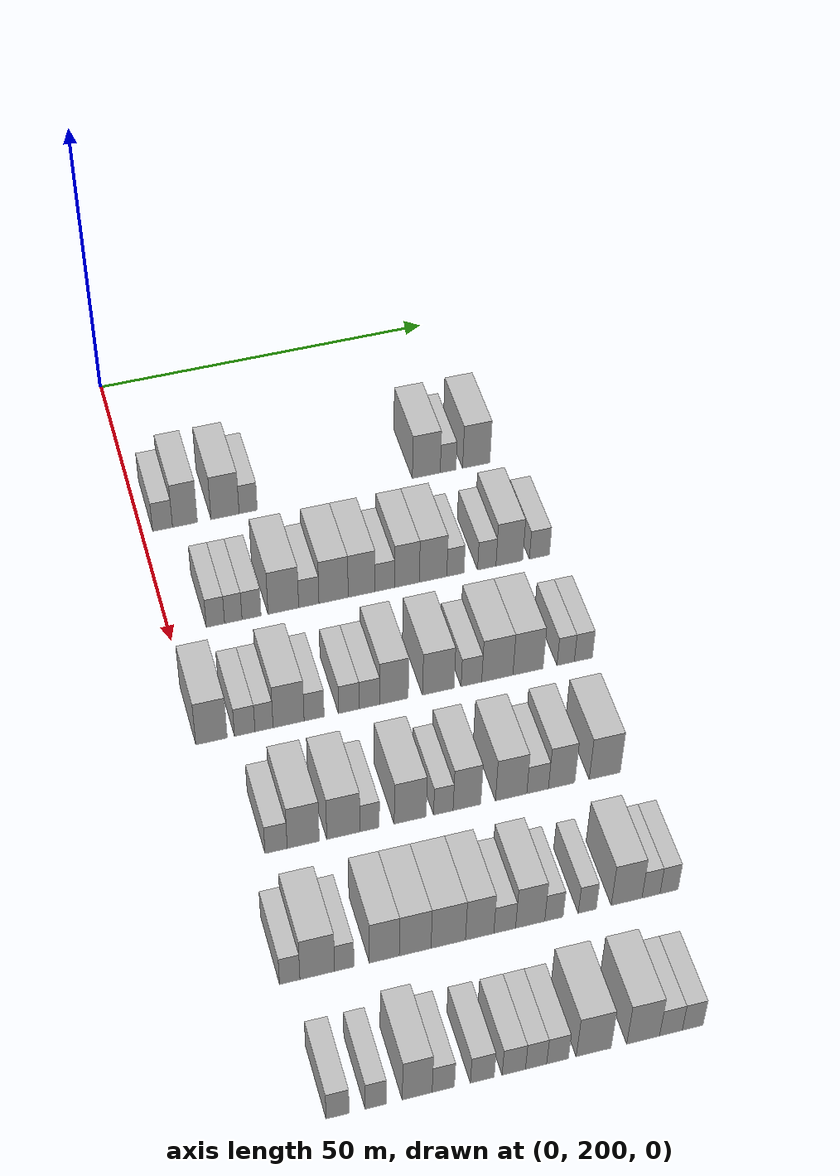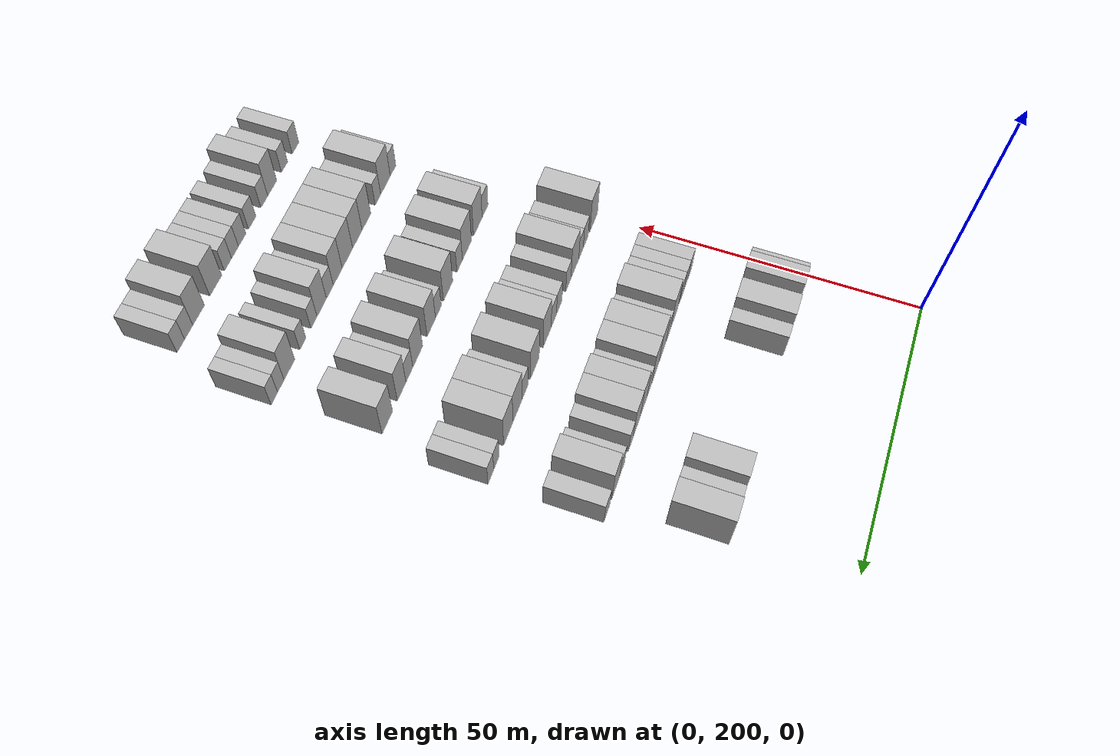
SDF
<sdf version="1.6">
 <world name="default">
  <model name="building_140">
   <static>1</static>
   <pose>25.0000 203.0741 0 0.000000 0.000000 0.000000</pose>
   <link name="link">
    <pose>0 0 3.00 0 0 0</pose>
    <collision name="collision"><geometry><box><size>10.0000 2.9091 6.0000</size></box></geometry></collision>
    <visual name="visual">
     <cast_shadows>0</cast_shadows>
     <geometry><box><size>10.0000 2.9091 6.0000</size></box></geometry>
     <material>
      <script>
       <uri>model://HANNAS_wall/materials/scripts</uri>
       <uri>model://HANNAS_wall/materials/textures</uri>
       <name>vrc/HANNAS_wall</name>
      </script>
     </material>
    </visual>
   </link>
  </model>
  <model name="building_141">
   <static>1</static>
   <pose>25.0000 206.3513 0 0.000000 0.000000 0.000000</pose>
   <link name="link">
    <pose>0 0 4.50 0 0 0</pose>
    <collision name="collision"><geometry><box><size>10.0000 3.6452 9.0000</size></box></geometry></collision>
    <visual name="visual">
     <cast_shadows>0</cast_shadows>
     <geometry><box><size>10.0000 3.6452 9.0000</size></box></geometry>
     <material>
      <script>
       <uri>model://HANNAS_wall/materials/scripts</uri>
       <uri>model://HANNAS_wall/materials/textures</uri>
       <name>vrc/HANNAS_wall</name>
      </script>
     </material>
    </visual>
   </link>
  </model>
  <model name="building_142">
   <static>1</static>
   <pose>25.0000 212.2451 0 0.000000 0.000000 0.000000</pose>
   <link name="link">
    <pose>0 0 4.50 0 0 0</pose>
    <collision name="collision"><geometry><box><size>10.0000 4.1425 9.0000</size></box></geometry></collision>
    <visual name="visual">
     <cast_shadows>0</cast_shadows>
     <geometry><box><size>10.0000 4.1425 9.0000</size></box></geometry>
     <material>
      <script>
       <uri>model://HANNAS_wall/materials/scripts</uri>
       <uri>model://HANNAS_wall/materials/textures</uri>
       <name>vrc/HANNAS_wall</name>
      </script>
     </material>
    </visual>
   </link>
  </model>
  <model name="building_143">
   <static>1</static>
   <pose>25.0000 215.6590 0 0.000000 0.000000 0.000000</pose>
   <link name="link">
    <pose>0 0 3.00 0 0 0</pose>
    <collision name="collision"><geometry><box><size>10.0000 2.6853 6.0000</size></box></geometry></collision>
    <visual name="visual">
     <cast_shadows>0</cast_shadows>
     <geometry><box><size>10.0000 2.6853 6.0000</size></box></geometry>
     <material>
      <script>
       <uri>model://HANNAS_wall/materials/scripts</uri>
       <uri>model://HANNAS_wall/materials/textures</uri>
       <name>vrc/HANNAS_wall</name>
      </script>
     </material>
    </visual>
   </link>
  </model>
  <model name="building_144">
   <static>1</static>
   <pose>25.0000 242.3461 0 0.000000 0.000000 0.000000</pose>
   <link name="link">
    <pose>0 0 4.50 0 0 0</pose>
    <collision name="collision"><geometry><box><size>10.0000 4.2296 9.0000</size></box></geometry></collision>
    <visual name="visual">
     <cast_shadows>0</cast_shadows>
     <geometry><box><size>10.0000 4.2296 9.0000</size></box></geometry>
     <material>
      <script>
       <uri>model://HANNAS_wall/materials/scripts</uri>
       <uri>model://HANNAS_wall/materials/textures</uri>
       <name>vrc/HANNAS_wall</name>
      </script>
     </material>
    </visual>
   </link>
  </model>
  <model name="building_145">
   <static>1</static>
   <pose>25.0000 245.6655 0 0.000000 0.000000 0.000000</pose>
   <link name="link">
    <pose>0 0 3.00 0 0 0</pose>
    <collision name="collision"><geometry><box><size>10.0000 2.4092 6.0000</size></box></geometry></collision>
    <visual name="visual">
     <cast_shadows>0</cast_shadows>
     <geometry><box><size>10.0000 2.4092 6.0000</size></box></geometry>
     <material>
      <script>
       <uri>model://HANNAS_wall/materials/scripts</uri>
       <uri>model://HANNAS_wall/materials/textures</uri>
       <name>vrc/HANNAS_wall</name>
      </script>
     </material>
    </visual>
   </link>
  </model>
  <model name="building_146">
   <static>1</static>
   <pose>25.0000 249.9518 0 0.000000 0.000000 0.000000</pose>
   <link name="link">
    <pose>0 0 4.50 0 0 0</pose>
    <collision name="collision"><geometry><box><size>10.0000 4.1634 9.0000</size></box></geometry></collision>
    <visual name="visual">
     <cast_shadows>0</cast_shadows>
     <geometry><box><size>10.0000 4.1634 9.0000</size></box></geometry>
     <material>
      <script>
       <uri>model://HANNAS_wall/materials/scripts</uri>
       <uri>model://HANNAS_wall/materials/textures</uri>
       <name>vrc/HANNAS_wall</name>
      </script>
     </material>
    </visual>
   </link>
  </model>
  <model name="building_307">
   <static>1</static>
   <pose>44.0000 206.5036 0 0.000000 0.000000 0.000000</pose>
   <link name="link">
    <pose>0 0 3.00 0 0 0</pose>
    <collision name="collision"><geometry><box><size>10.0000 2.5932 6.0000</size></box></geometry></collision>
    <visual name="visual">
     <cast_shadows>0</cast_shadows>
     <geometry><box><size>10.0000 2.5932 6.0000</size></box></geometry>
     <material>
      <script>
       <uri>model://HANNAS_wall/materials/scripts</uri>
       <uri>model://HANNAS_wall/materials/textures</uri>
       <name>vrc/HANNAS_wall</name>
      </script>
     </material>
    </visual>
   </link>
  </model>
  <model name="building_308">
   <static>1</static>
   <pose>44.0000 209.0437 0 0.000000 0.000000 0.000000</pose>
   <link name="link">
    <pose>0 0 3.00 0 0 0</pose>
    <collision name="collision"><geometry><box><size>10.0000 2.4868 6.0000</size></box></geometry></collision>
    <visual name="visual">
     <cast_shadows>0</cast_shadows>
     <geometry><box><size>10.0000 2.4868 6.0000</size></box></geometry>
     <material>
      <script>
       <uri>model://HANNAS_wall/materials/scripts</uri>
       <uri>model://HANNAS_wall/materials/textures</uri>
       <name>vrc/HANNAS_wall</name>
      </script>
     </material>
    </visual>
   </link>
  </model>
  <model name="building_309">
   <static>1</static>
   <pose>44.0000 211.6423 0 0.000000 0.000000 0.000000</pose>
   <link name="link">
    <pose>0 0 3.00 0 0 0</pose>
    <collision name="collision"><geometry><box><size>10.0000 2.7104 6.0000</size></box></geometry></collision>
    <visual name="visual">
     <cast_shadows>0</cast_shadows>
     <geometry><box><size>10.0000 2.7104 6.0000</size></box></geometry>
     <material>
      <script>
       <uri>model://HANNAS_wall/materials/scripts</uri>
       <uri>model://HANNAS_wall/materials/textures</uri>
       <name>vrc/HANNAS_wall</name>
      </script>
     </material>
    </visual>
   </link>
  </model>
  <model name="building_310">
   <static>1</static>
   <pose>44.0000 216.1931 0 0.000000 0.000000 0.000000</pose>
   <link name="link">
    <pose>0 0 4.50 0 0 0</pose>
    <collision name="collision"><geometry><box><size>10.0000 4.3913 9.0000</size></box></geometry></collision>
    <visual name="visual">
     <cast_shadows>0</cast_shadows>
     <geometry><box><size>10.0000 4.3913 9.0000</size></box></geometry>
     <material>
      <script>
       <uri>model://HANNAS_wall/materials/scripts</uri>
       <uri>model://HANNAS_wall/materials/textures</uri>
       <name>vrc/HANNAS_wall</name>
      </script>
     </material>
    </visual>
   </link>
  </model>
  <model name="building_311">
   <static>1</static>
   <pose>44.0000 219.8458 0 0.000000 0.000000 0.000000</pose>
   <link name="link">
    <pose>0 0 3.00 0 0 0</pose>
    <collision name="collision"><geometry><box><size>10.0000 2.9143 6.0000</size></box></geometry></collision>
    <visual name="visual">
     <cast_shadows>0</cast_shadows>
     <geometry><box><size>10.0000 2.9143 6.0000</size></box></geometry>
     <material>
      <script>
       <uri>model://HANNAS_wall/materials/scripts</uri>
       <uri>model://HANNAS_wall/materials/textures</uri>
       <name>vrc/HANNAS_wall</name>
      </script>
     </material>
    </visual>
   </link>
  </model>
  <model name="building_312">
   <static>1</static>
   <pose>44.0000 223.4106 0 0.000000 0.000000 0.000000</pose>
   <link name="link">
    <pose>0 0 4.50 0 0 0</pose>
    <collision name="collision"><geometry><box><size>10.0000 4.2153 9.0000</size></box></geometry></collision>
    <visual name="visual">
     <cast_shadows>0</cast_shadows>
     <geometry><box><size>10.0000 4.2153 9.0000</size></box></geometry>
     <material>
      <script>
       <uri>model://HANNAS_wall/materials/scripts</uri>
       <uri>model://HANNAS_wall/materials/textures</uri>
       <name>vrc/HANNAS_wall</name>
      </script>
     </material>
    </visual>
   </link>
  </model>
  <model name="building_313">
   <static>1</static>
   <pose>44.0000 227.4663 0 0.000000 0.000000 0.000000</pose>
   <link name="link">
    <pose>0 0 4.50 0 0 0</pose>
    <collision name="collision"><geometry><box><size>10.0000 3.8960 9.0000</size></box></geometry></collision>
    <visual name="visual">
     <cast_shadows>0</cast_shadows>
     <geometry><box><size>10.0000 3.8960 9.0000</size></box></geometry>
     <material>
      <script>
       <uri>model://HANNAS_wall/materials/scripts</uri>
       <uri>model://HANNAS_wall/materials/textures</uri>
       <name>vrc/HANNAS_wall</name>
      </script>
     </material>
    </visual>
   </link>
  </model>
  <model name="building_314">
   <static>1</static>
   <pose>44.0000 230.8270 0 0.000000 0.000000 0.000000</pose>
   <link name="link">
    <pose>0 0 3.00 0 0 0</pose>
    <collision name="collision"><geometry><box><size>10.0000 2.8255 6.0000</size></box></geometry></collision>
    <visual name="visual">
     <cast_shadows>0</cast_shadows>
     <geometry><box><size>10.0000 2.8255 6.0000</size></box></geometry>
     <material>
      <script>
       <uri>model://HANNAS_wall/materials/scripts</uri>
       <uri>model://HANNAS_wall/materials/textures</uri>
       <name>vrc/HANNAS_wall</name>
      </script>
     </material>
    </visual>
   </link>
  </model>
  <model name="building_315">
   <static>1</static>
   <pose>44.0000 234.0480 0 0.000000 0.000000 0.000000</pose>
   <link name="link">
    <pose>0 0 4.50 0 0 0</pose>
    <collision name="collision"><geometry><box><size>10.0000 3.6164 9.0000</size></box></geometry></collision>
    <visual name="visual">
     <cast_shadows>0</cast_shadows>
     <geometry><box><size>10.0000 3.6164 9.0000</size></box></geometry>
     <material>
      <script>
       <uri>model://HANNAS_wall/materials/scripts</uri>
       <uri>model://HANNAS_wall/materials/textures</uri>
       <name>vrc/HANNAS_wall</name>
      </script>
     </material>
    </visual>
   </link>
  </model>
  <model name="building_316">
   <static>1</static>
   <pose>44.0000 237.8694 0 0.000000 0.000000 0.000000</pose>
   <link name="link">
    <pose>0 0 4.50 0 0 0</pose>
    <collision name="collision"><geometry><box><size>10.0000 4.0265 9.0000</size></box></geometry></collision>
    <visual name="visual">
     <cast_shadows>0</cast_shadows>
     <geometry><box><size>10.0000 4.0265 9.0000</size></box></geometry>
     <material>
      <script>
       <uri>model://HANNAS_wall/materials/scripts</uri>
       <uri>model://HANNAS_wall/materials/textures</uri>
       <name>vrc/HANNAS_wall</name>
      </script>
     </material>
    </visual>
   </link>
  </model>
  <model name="building_317">
   <static>1</static>
   <pose>44.0000 241.1524 0 0.000000 0.000000 0.000000</pose>
   <link name="link">
    <pose>0 0 3.00 0 0 0</pose>
    <collision name="collision"><geometry><box><size>10.0000 2.5395 6.0000</size></box></geometry></collision>
    <visual name="visual">
     <cast_shadows>0</cast_shadows>
     <geometry><box><size>10.0000 2.5395 6.0000</size></box></geometry>
     <material>
      <script>
       <uri>model://HANNAS_wall/materials/scripts</uri>
       <uri>model://HANNAS_wall/materials/textures</uri>
       <name>vrc/HANNAS_wall</name>
      </script>
     </material>
    </visual>
   </link>
  </model>
  <model name="building_318">
   <static>1</static>
   <pose>44.0000 245.7757 0 0.000000 0.000000 0.000000</pose>
   <link name="link">
    <pose>0 0 3.00 0 0 0</pose>
    <collision name="collision"><geometry><box><size>10.0000 2.7072 6.0000</size></box></geometry></collision>
    <visual name="visual">
     <cast_shadows>0</cast_shadows>
     <geometry><box><size>10.0000 2.7072 6.0000</size></box></geometry>
     <material>
      <script>
       <uri>model://HANNAS_wall/materials/scripts</uri>
       <uri>model://HANNAS_wall/materials/textures</uri>
       <name>vrc/HANNAS_wall</name>
      </script>
     </material>
    </visual>
   </link>
  </model>
  <model name="building_319">
   <static>1</static>
   <pose>44.0000 249.1113 0 0.000000 0.000000 0.000000</pose>
   <link name="link">
    <pose>0 0 4.50 0 0 0</pose>
    <collision name="collision"><geometry><box><size>10.0000 3.9639 9.0000</size></box></geometry></collision>
    <visual name="visual">
     <cast_shadows>0</cast_shadows>
     <geometry><box><size>10.0000 3.9639 9.0000</size></box></geometry>
     <material>
      <script>
       <uri>model://HANNAS_wall/materials/scripts</uri>
       <uri>model://HANNAS_wall/materials/textures</uri>
       <name>vrc/HANNAS_wall</name>
      </script>
     </material>
    </visual>
   </link>
  </model>
  <model name="building_320">
   <static>1</static>
   <pose>44.0000 253.5784 0 0.000000 0.000000 0.000000</pose>
   <link name="link">
    <pose>0 0 3.00 0 0 0</pose>
    <collision name="collision"><geometry><box><size>10.0000 2.9703 6.0000</size></box></geometry></collision>
    <visual name="visual">
     <cast_shadows>0</cast_shadows>
     <geometry><box><size>10.0000 2.9703 6.0000</size></box></geometry>
     <material>
      <script>
       <uri>model://HANNAS_wall/materials/scripts</uri>
       <uri>model://HANNAS_wall/materials/textures</uri>
       <name>vrc/HANNAS_wall</name>
      </script>
     </material>
    </visual>
   </link>
  </model>
  <model name="building_487">
   <static>1</static>
   <pose>63.0000 201.6480 0 0.000000 0.000000 0.000000</pose>
   <link name="link">
    <pose>0 0 4.50 0 0 0</pose>
    <collision name="collision"><geometry><box><size>10.0000 4.2913 9.0000</size></box></geometry></collision>
    <visual name="visual">
     <cast_shadows>0</cast_shadows>
     <geometry><box><size>10.0000 4.2913 9.0000</size></box></geometry>
     <material>
      <script>
       <uri>model://HANNAS_wall/materials/scripts</uri>
       <uri>model://HANNAS_wall/materials/textures</uri>
       <name>vrc/HANNAS_wall</name>
      </script>
     </material>
    </visual>
   </link>
  </model>
  <model name="building_488">
   <static>1</static>
   <pose>63.0000 206.2002 0 0.000000 0.000000 0.000000</pose>
   <link name="link">
    <pose>0 0 3.00 0 0 0</pose>
    <collision name="collision"><geometry><box><size>10.0000 2.8131 6.0000</size></box></geometry></collision>
    <visual name="visual">
     <cast_shadows>0</cast_shadows>
     <geometry><box><size>10.0000 2.8131 6.0000</size></box></geometry>
     <material>
      <script>
       <uri>model://HANNAS_wall/materials/scripts</uri>
       <uri>model://HANNAS_wall/materials/textures</uri>
       <name>vrc/HANNAS_wall</name>
      </script>
     </material>
    </visual>
   </link>
  </model>
  <model name="building_489">
   <static>1</static>
   <pose>63.0000 208.8527 0 0.000000 0.000000 0.000000</pose>
   <link name="link">
    <pose>0 0 3.00 0 0 0</pose>
    <collision name="collision"><geometry><box><size>10.0000 2.4920 6.0000</size></box></geometry></collision>
    <visual name="visual">
     <cast_shadows>0</cast_shadows>
     <geometry><box><size>10.0000 2.4920 6.0000</size></box></geometry>
     <material>
      <script>
       <uri>model://HANNAS_wall/materials/scripts</uri>
       <uri>model://HANNAS_wall/materials/textures</uri>
       <name>vrc/HANNAS_wall</name>
      </script>
     </material>
    </visual>
   </link>
  </model>
  <model name="building_490">
   <static>1</static>
   <pose>63.0000 212.2396 0 0.000000 0.000000 0.000000</pose>
   <link name="link">
    <pose>0 0 4.50 0 0 0</pose>
    <collision name="collision"><geometry><box><size>10.0000 4.2818 9.0000</size></box></geometry></collision>
    <visual name="visual">
     <cast_shadows>0</cast_shadows>
     <geometry><box><size>10.0000 4.2818 9.0000</size></box></geometry>
     <material>
      <script>
       <uri>model://HANNAS_wall/materials/scripts</uri>
       <uri>model://HANNAS_wall/materials/textures</uri>
       <name>vrc/HANNAS_wall</name>
      </script>
     </material>
    </visual>
   </link>
  </model>
  <model name="building_491">
   <static>1</static>
   <pose>63.0000 215.7628 0 0.000000 0.000000 0.000000</pose>
   <link name="link">
    <pose>0 0 3.00 0 0 0</pose>
    <collision name="collision"><geometry><box><size>10.0000 2.7646 6.0000</size></box></geometry></collision>
    <visual name="visual">
     <cast_shadows>0</cast_shadows>
     <geometry><box><size>10.0000 2.7646 6.0000</size></box></geometry>
     <material>
      <script>
       <uri>model://HANNAS_wall/materials/scripts</uri>
       <uri>model://HANNAS_wall/materials/textures</uri>
       <name>vrc/HANNAS_wall</name>
      </script>
     </material>
    </visual>
   </link>
  </model>
  <model name="building_492">
   <static>1</static>
   <pose>63.0000 220.5924 0 0.000000 0.000000 0.000000</pose>
   <link name="link">
    <pose>0 0 3.00 0 0 0</pose>
    <collision name="collision"><geometry><box><size>10.0000 2.8948 6.0000</size></box></geometry></collision>
    <visual name="visual">
     <cast_shadows>0</cast_shadows>
     <geometry><box><size>10.0000 2.8948 6.0000</size></box></geometry>
     <material>
      <script>
       <uri>model://HANNAS_wall/materials/scripts</uri>
       <uri>model://HANNAS_wall/materials/textures</uri>
       <name>vrc/HANNAS_wall</name>
      </script>
     </material>
    </visual>
   </link>
  </model>
  <model name="building_493">
   <static>1</static>
   <pose>63.0000 223.4485 0 0.000000 0.000000 0.000000</pose>
   <link name="link">
    <pose>0 0 3.00 0 0 0</pose>
    <collision name="collision"><geometry><box><size>10.0000 2.8175 6.0000</size></box></geometry></collision>
    <visual name="visual">
     <cast_shadows>0</cast_shadows>
     <geometry><box><size>10.0000 2.8175 6.0000</size></box></geometry>
     <material>
      <script>
       <uri>model://HANNAS_wall/materials/scripts</uri>
       <uri>model://HANNAS_wall/materials/textures</uri>
       <name>vrc/HANNAS_wall</name>
      </script>
     </material>
    </visual>
   </link>
  </model>
  <model name="building_494">
   <static>1</static>
   <pose>63.0000 226.8751 0 0.000000 0.000000 0.000000</pose>
   <link name="link">
    <pose>0 0 4.50 0 0 0</pose>
    <collision name="collision"><geometry><box><size>10.0000 4.0356 9.0000</size></box></geometry></collision>
    <visual name="visual">
     <cast_shadows>0</cast_shadows>
     <geometry><box><size>10.0000 4.0356 9.0000</size></box></geometry>
     <material>
      <script>
       <uri>model://HANNAS_wall/materials/scripts</uri>
       <uri>model://HANNAS_wall/materials/textures</uri>
       <name>vrc/HANNAS_wall</name>
      </script>
     </material>
    </visual>
   </link>
  </model>
  <model name="building_495">
   <static>1</static>
   <pose>63.0000 233.1221 0 0.000000 0.000000 0.000000</pose>
   <link name="link">
    <pose>0 0 4.50 0 0 0</pose>
    <collision name="collision"><geometry><box><size>10.0000 4.4583 9.0000</size></box></geometry></collision>
    <visual name="visual">
     <cast_shadows>0</cast_shadows>
     <geometry><box><size>10.0000 4.4583 9.0000</size></box></geometry>
     <material>
      <script>
       <uri>model://HANNAS_wall/materials/scripts</uri>
       <uri>model://HANNAS_wall/materials/textures</uri>
       <name>vrc/HANNAS_wall</name>
      </script>
     </material>
    </visual>
   </link>
  </model>
  <model name="building_496">
   <static>1</static>
   <pose>63.0000 237.8103 0 0.000000 0.000000 0.000000</pose>
   <link name="link">
    <pose>0 0 3.00 0 0 0</pose>
    <collision name="collision"><geometry><box><size>10.0000 2.9181 6.0000</size></box></geometry></collision>
    <visual name="visual">
     <cast_shadows>0</cast_shadows>
     <geometry><box><size>10.0000 2.9181 6.0000</size></box></geometry>
     <material>
      <script>
       <uri>model://HANNAS_wall/materials/scripts</uri>
       <uri>model://HANNAS_wall/materials/textures</uri>
       <name>vrc/HANNAS_wall</name>
      </script>
     </material>
    </visual>
   </link>
  </model>
  <model name="building_497">
   <static>1</static>
   <pose>63.0000 241.4926 0 0.000000 0.000000 0.000000</pose>
   <link name="link">
    <pose>0 0 4.50 0 0 0</pose>
    <collision name="collision"><geometry><box><size>10.0000 4.4466 9.0000</size></box></geometry></collision>
    <visual name="visual">
     <cast_shadows>0</cast_shadows>
     <geometry><box><size>10.0000 4.4466 9.0000</size></box></geometry>
     <material>
      <script>
       <uri>model://HANNAS_wall/materials/scripts</uri>
       <uri>model://HANNAS_wall/materials/textures</uri>
       <name>vrc/HANNAS_wall</name>
      </script>
     </material>
    </visual>
   </link>
  </model>
  <model name="building_498">
   <static>1</static>
   <pose>63.0000 245.8710 0 0.000000 0.000000 0.000000</pose>
   <link name="link">
    <pose>0 0 4.50 0 0 0</pose>
    <collision name="collision"><geometry><box><size>10.0000 4.3102 9.0000</size></box></geometry></collision>
    <visual name="visual">
     <cast_shadows>0</cast_shadows>
     <geometry><box><size>10.0000 4.3102 9.0000</size></box></geometry>
     <material>
      <script>
       <uri>model://HANNAS_wall/materials/scripts</uri>
       <uri>model://HANNAS_wall/materials/textures</uri>
       <name>vrc/HANNAS_wall</name>
      </script>
     </material>
    </visual>
   </link>
  </model>
  <model name="building_499">
   <static>1</static>
   <pose>63.0000 251.2716 0 0.000000 0.000000 0.000000</pose>
   <link name="link">
    <pose>0 0 3.00 0 0 0</pose>
    <collision name="collision"><geometry><box><size>10.0000 2.4909 6.0000</size></box></geometry></collision>
    <visual name="visual">
     <cast_shadows>0</cast_shadows>
     <geometry><box><size>10.0000 2.4909 6.0000</size></box></geometry>
     <material>
      <script>
       <uri>model://HANNAS_wall/materials/scripts</uri>
       <uri>model://HANNAS_wall/materials/textures</uri>
       <name>vrc/HANNAS_wall</name>
      </script>
     </material>
    </visual>
   </link>
  </model>
  <model name="building_500">
   <static>1</static>
   <pose>63.0000 253.8143 0 0.000000 0.000000 0.000000</pose>
   <link name="link">
    <pose>0 0 3.00 0 0 0</pose>
    <collision name="collision"><geometry><box><size>10.0000 2.5946 6.0000</size></box></geometry></collision>
    <visual name="visual">
     <cast_shadows>0</cast_shadows>
     <geometry><box><size>10.0000 2.5946 6.0000</size></box></geometry>
     <material>
      <script>
       <uri>model://HANNAS_wall/materials/scripts</uri>
       <uri>model://HANNAS_wall/materials/textures</uri>
       <name>vrc/HANNAS_wall</name>
      </script>
     </material>
    </visual>
   </link>
  </model>
  <model name="building_634">
   <static>1</static>
   <pose>82.0000 205.8728 0 0.000000 0.000000 0.000000</pose>
   <link name="link">
    <pose>0 0 3.00 0 0 0</pose>
    <collision name="collision"><geometry><box><size>10.0000 2.9361 6.0000</size></box></geometry></collision>
    <visual name="visual">
     <cast_shadows>0</cast_shadows>
     <geometry><box><size>10.0000 2.9361 6.0000</size></box></geometry>
     <material>
      <script>
       <uri>model://HANNAS_wall/materials/scripts</uri>
       <uri>model://HANNAS_wall/materials/textures</uri>
       <name>vrc/HANNAS_wall</name>
      </script>
     </material>
    </visual>
   </link>
  </model>
  <model name="building_635">
   <static>1</static>
   <pose>82.0000 209.4724 0 0.000000 0.000000 0.000000</pose>
   <link name="link">
    <pose>0 0 4.50 0 0 0</pose>
    <collision name="collision"><geometry><box><size>10.0000 4.2632 9.0000</size></box></geometry></collision>
    <visual name="visual">
     <cast_shadows>0</cast_shadows>
     <geometry><box><size>10.0000 4.2632 9.0000</size></box></geometry>
     <material>
      <script>
       <uri>model://HANNAS_wall/materials/scripts</uri>
       <uri>model://HANNAS_wall/materials/textures</uri>
       <name>vrc/HANNAS_wall</name>
      </script>
     </material>
    </visual>
   </link>
  </model>
  <model name="building_636">
   <static>1</static>
   <pose>82.0000 214.8080 0 0.000000 0.000000 0.000000</pose>
   <link name="link">
    <pose>0 0 4.50 0 0 0</pose>
    <collision name="collision"><geometry><box><size>10.0000 4.4079 9.0000</size></box></geometry></collision>
    <visual name="visual">
     <cast_shadows>0</cast_shadows>
     <geometry><box><size>10.0000 4.4079 9.0000</size></box></geometry>
     <material>
      <script>
       <uri>model://HANNAS_wall/materials/scripts</uri>
       <uri>model://HANNAS_wall/materials/textures</uri>
       <name>vrc/HANNAS_wall</name>
      </script>
     </material>
    </visual>
   </link>
  </model>
  <model name="building_637">
   <static>1</static>
   <pose>82.0000 218.3276 0 0.000000 0.000000 0.000000</pose>
   <link name="link">
    <pose>0 0 3.00 0 0 0</pose>
    <collision name="collision"><geometry><box><size>10.0000 2.6313 6.0000</size></box></geometry></collision>
    <visual name="visual">
     <cast_shadows>0</cast_shadows>
     <geometry><box><size>10.0000 2.6313 6.0000</size></box></geometry>
     <material>
      <script>
       <uri>model://HANNAS_wall/materials/scripts</uri>
       <uri>model://HANNAS_wall/materials/textures</uri>
       <name>vrc/HANNAS_wall</name>
      </script>
     </material>
    </visual>
   </link>
  </model>
  <model name="building_638">
   <static>1</static>
   <pose>82.0000 223.8048 0 0.000000 0.000000 0.000000</pose>
   <link name="link">
    <pose>0 0 4.50 0 0 0</pose>
    <collision name="collision"><geometry><box><size>10.0000 4.3232 9.0000</size></box></geometry></collision>
    <visual name="visual">
     <cast_shadows>0</cast_shadows>
     <geometry><box><size>10.0000 4.3232 9.0000</size></box></geometry>
     <material>
      <script>
       <uri>model://HANNAS_wall/materials/scripts</uri>
       <uri>model://HANNAS_wall/materials/textures</uri>
       <name>vrc/HANNAS_wall</name>
      </script>
     </material>
    </visual>
   </link>
  </model>
  <model name="building_639">
   <static>1</static>
   <pose>82.0000 228.2898 0 0.000000 0.000000 0.000000</pose>
   <link name="link">
    <pose>0 0 3.00 0 0 0</pose>
    <collision name="collision"><geometry><box><size>10.0000 2.6467 6.0000</size></box></geometry></collision>
    <visual name="visual">
     <cast_shadows>0</cast_shadows>
     <geometry><box><size>10.0000 2.6467 6.0000</size></box></geometry>
     <material>
      <script>
       <uri>model://HANNAS_wall/materials/scripts</uri>
       <uri>model://HANNAS_wall/materials/textures</uri>
       <name>vrc/HANNAS_wall</name>
      </script>
     </material>
    </visual>
   </link>
  </model>
  <model name="building_640">
   <static>1</static>
   <pose>82.0000 231.5026 0 0.000000 0.000000 0.000000</pose>
   <link name="link">
    <pose>0 0 4.50 0 0 0</pose>
    <collision name="collision"><geometry><box><size>10.0000 3.7789 9.0000</size></box></geometry></collision>
    <visual name="visual">
     <cast_shadows>0</cast_shadows>
     <geometry><box><size>10.0000 3.7789 9.0000</size></box></geometry>
     <material>
      <script>
       <uri>model://HANNAS_wall/materials/scripts</uri>
       <uri>model://HANNAS_wall/materials/textures</uri>
       <name>vrc/HANNAS_wall</name>
      </script>
     </material>
    </visual>
   </link>
  </model>
  <model name="building_641">
   <static>1</static>
   <pose>82.0000 237.5393 0 0.000000 0.000000 0.000000</pose>
   <link name="link">
    <pose>0 0 4.50 0 0 0</pose>
    <collision name="collision"><geometry><box><size>10.0000 4.2945 9.0000</size></box></geometry></collision>
    <visual name="visual">
     <cast_shadows>0</cast_shadows>
     <geometry><box><size>10.0000 4.2945 9.0000</size></box></geometry>
     <material>
      <script>
       <uri>model://HANNAS_wall/materials/scripts</uri>
       <uri>model://HANNAS_wall/materials/textures</uri>
       <name>vrc/HANNAS_wall</name>
      </script>
     </material>
    </visual>
   </link>
  </model>
  <model name="building_642">
   <static>1</static>
   <pose>82.0000 241.1733 0 0.000000 0.000000 0.000000</pose>
   <link name="link">
    <pose>0 0 3.00 0 0 0</pose>
    <collision name="collision"><geometry><box><size>10.0000 2.9737 6.0000</size></box></geometry></collision>
    <visual name="visual">
     <cast_shadows>0</cast_shadows>
     <geometry><box><size>10.0000 2.9737 6.0000</size></box></geometry>
     <material>
      <script>
       <uri>model://HANNAS_wall/materials/scripts</uri>
       <uri>model://HANNAS_wall/materials/textures</uri>
       <name>vrc/HANNAS_wall</name>
      </script>
     </material>
    </visual>
   </link>
  </model>
  <model name="building_643">
   <static>1</static>
   <pose>82.0000 244.4833 0 0.000000 0.000000 0.000000</pose>
   <link name="link">
    <pose>0 0 4.50 0 0 0</pose>
    <collision name="collision"><geometry><box><size>10.0000 3.6462 9.0000</size></box></geometry></collision>
    <visual name="visual">
     <cast_shadows>0</cast_shadows>
     <geometry><box><size>10.0000 3.6462 9.0000</size></box></geometry>
     <material>
      <script>
       <uri>model://HANNAS_wall/materials/scripts</uri>
       <uri>model://HANNAS_wall/materials/textures</uri>
       <name>vrc/HANNAS_wall</name>
      </script>
     </material>
    </visual>
   </link>
  </model>
  <model name="building_644">
   <static>1</static>
   <pose>82.0000 250.4599 0 0.000000 0.000000 0.000000</pose>
   <link name="link">
    <pose>0 0 4.50 0 0 0</pose>
    <collision name="collision"><geometry><box><size>10.0000 4.3070 9.0000</size></box></geometry></collision>
    <visual name="visual">
     <cast_shadows>0</cast_shadows>
     <geometry><box><size>10.0000 4.3070 9.0000</size></box></geometry>
     <material>
      <script>
       <uri>model://HANNAS_wall/materials/scripts</uri>
       <uri>model://HANNAS_wall/materials/textures</uri>
       <name>vrc/HANNAS_wall</name>
      </script>
     </material>
    </visual>
   </link>
  </model>
  <model name="building_806">
   <static>1</static>
   <pose>101.0000 202.9585 0 0.000000 0.000000 0.000000</pose>
   <link name="link">
    <pose>0 0 3.00 0 0 0</pose>
    <collision name="collision"><geometry><box><size>10.0000 2.5976 6.0000</size></box></geometry></collision>
    <visual name="visual">
     <cast_shadows>0</cast_shadows>
     <geometry><box><size>10.0000 2.5976 6.0000</size></box></geometry>
     <material>
      <script>
       <uri>model://HANNAS_wall/materials/scripts</uri>
       <uri>model://HANNAS_wall/materials/textures</uri>
       <name>vrc/HANNAS_wall</name>
      </script>
     </material>
    </visual>
   </link>
  </model>
  <model name="building_807">
   <static>1</static>
   <pose>101.0000 206.4700 0 0.000000 0.000000 0.000000</pose>
   <link name="link">
    <pose>0 0 4.50 0 0 0</pose>
    <collision name="collision"><geometry><box><size>10.0000 4.4254 9.0000</size></box></geometry></collision>
    <visual name="visual">
     <cast_shadows>0</cast_shadows>
     <geometry><box><size>10.0000 4.4254 9.0000</size></box></geometry>
     <material>
      <script>
       <uri>model://HANNAS_wall/materials/scripts</uri>
       <uri>model://HANNAS_wall/materials/textures</uri>
       <name>vrc/HANNAS_wall</name>
      </script>
     </material>
    </visual>
   </link>
  </model>
  <model name="building_808">
   <static>1</static>
   <pose>101.0000 209.9263 0 0.000000 0.000000 0.000000</pose>
   <link name="link">
    <pose>0 0 3.00 0 0 0</pose>
    <collision name="collision"><geometry><box><size>10.0000 2.4872 6.0000</size></box></geometry></collision>
    <visual name="visual">
     <cast_shadows>0</cast_shadows>
     <geometry><box><size>10.0000 2.4872 6.0000</size></box></geometry>
     <material>
      <script>
       <uri>model://HANNAS_wall/materials/scripts</uri>
       <uri>model://HANNAS_wall/materials/textures</uri>
       <name>vrc/HANNAS_wall</name>
      </script>
     </material>
    </visual>
   </link>
  </model>
  <model name="building_809">
   <static>1</static>
   <pose>101.0000 215.0956 0 0.000000 0.000000 0.000000</pose>
   <link name="link">
    <pose>0 0 4.50 0 0 0</pose>
    <collision name="collision"><geometry><box><size>10.0000 3.8514 9.0000</size></box></geometry></collision>
    <visual name="visual">
     <cast_shadows>0</cast_shadows>
     <geometry><box><size>10.0000 3.8514 9.0000</size></box></geometry>
     <material>
      <script>
       <uri>model://HANNAS_wall/materials/scripts</uri>
       <uri>model://HANNAS_wall/materials/textures</uri>
       <name>vrc/HANNAS_wall</name>
      </script>
     </material>
    </visual>
   </link>
  </model>
  <model name="building_810">
   <static>1</static>
   <pose>101.0000 219.0798 0 0.000000 0.000000 0.000000</pose>
   <link name="link">
    <pose>0 0 4.50 0 0 0</pose>
    <collision name="collision"><geometry><box><size>10.0000 4.1171 9.0000</size></box></geometry></collision>
    <visual name="visual">
     <cast_shadows>0</cast_shadows>
     <geometry><box><size>10.0000 4.1171 9.0000</size></box></geometry>
     <material>
      <script>
       <uri>model://HANNAS_wall/materials/scripts</uri>
       <uri>model://HANNAS_wall/materials/textures</uri>
       <name>vrc/HANNAS_wall</name>
      </script>
     </material>
    </visual>
   </link>
  </model>
  <model name="building_811">
   <static>1</static>
   <pose>101.0000 223.3826 0 0.000000 0.000000 0.000000</pose>
   <link name="link">
    <pose>0 0 4.50 0 0 0</pose>
    <collision name="collision"><geometry><box><size>10.0000 4.4884 9.0000</size></box></geometry></collision>
    <visual name="visual">
     <cast_shadows>0</cast_shadows>
     <geometry><box><size>10.0000 4.4884 9.0000</size></box></geometry>
     <material>
      <script>
       <uri>model://HANNAS_wall/materials/scripts</uri>
       <uri>model://HANNAS_wall/materials/textures</uri>
       <name>vrc/HANNAS_wall</name>
      </script>
     </material>
    </visual>
   </link>
  </model>
  <model name="building_812">
   <static>1</static>
   <pose>101.0000 227.4846 0 0.000000 0.000000 0.000000</pose>
   <link name="link">
    <pose>0 0 4.50 0 0 0</pose>
    <collision name="collision"><geometry><box><size>10.0000 3.7157 9.0000</size></box></geometry></collision>
    <visual name="visual">
     <cast_shadows>0</cast_shadows>
     <geometry><box><size>10.0000 3.7157 9.0000</size></box></geometry>
     <material>
      <script>
       <uri>model://HANNAS_wall/materials/scripts</uri>
       <uri>model://HANNAS_wall/materials/textures</uri>
       <name>vrc/HANNAS_wall</name>
      </script>
     </material>
    </visual>
   </link>
  </model>
  <model name="building_813">
   <static>1</static>
   <pose>101.0000 230.7727 0 0.000000 0.000000 0.000000</pose>
   <link name="link">
    <pose>0 0 3.00 0 0 0</pose>
    <collision name="collision"><geometry><box><size>10.0000 2.8605 6.0000</size></box></geometry></collision>
    <visual name="visual">
     <cast_shadows>0</cast_shadows>
     <geometry><box><size>10.0000 2.8605 6.0000</size></box></geometry>
     <material>
      <script>
       <uri>model://HANNAS_wall/materials/scripts</uri>
       <uri>model://HANNAS_wall/materials/textures</uri>
       <name>vrc/HANNAS_wall</name>
      </script>
     </material>
    </visual>
   </link>
  </model>
  <model name="building_814">
   <static>1</static>
   <pose>101.0000 234.1250 0 0.000000 0.000000 0.000000</pose>
   <link name="link">
    <pose>0 0 4.50 0 0 0</pose>
    <collision name="collision"><geometry><box><size>10.0000 3.8441 9.0000</size></box></geometry></collision>
    <visual name="visual">
     <cast_shadows>0</cast_shadows>
     <geometry><box><size>10.0000 3.8441 9.0000</size></box></geometry>
     <material>
      <script>
       <uri>model://HANNAS_wall/materials/scripts</uri>
       <uri>model://HANNAS_wall/materials/textures</uri>
       <name>vrc/HANNAS_wall</name>
      </script>
     </material>
    </visual>
   </link>
  </model>
  <model name="building_815">
   <static>1</static>
   <pose>101.0000 237.2674 0 0.000000 0.000000 0.000000</pose>
   <link name="link">
    <pose>0 0 3.00 0 0 0</pose>
    <collision name="collision"><geometry><box><size>10.0000 2.4408 6.0000</size></box></geometry></collision>
    <visual name="visual">
     <cast_shadows>0</cast_shadows>
     <geometry><box><size>10.0000 2.4408 6.0000</size></box></geometry>
     <material>
      <script>
       <uri>model://HANNAS_wall/materials/scripts</uri>
       <uri>model://HANNAS_wall/materials/textures</uri>
       <name>vrc/HANNAS_wall</name>
      </script>
     </material>
    </visual>
   </link>
  </model>
  <model name="building_816">
   <static>1</static>
   <pose>101.0000 241.6899 0 0.000000 0.000000 0.000000</pose>
   <link name="link">
    <pose>0 0 3.00 0 0 0</pose>
    <collision name="collision"><geometry><box><size>10.0000 2.4042 6.0000</size></box></geometry></collision>
    <visual name="visual">
     <cast_shadows>0</cast_shadows>
     <geometry><box><size>10.0000 2.4042 6.0000</size></box></geometry>
     <material>
      <script>
       <uri>model://HANNAS_wall/materials/scripts</uri>
       <uri>model://HANNAS_wall/materials/textures</uri>
       <name>vrc/HANNAS_wall</name>
      </script>
     </material>
    </visual>
   </link>
  </model>
  <model name="building_817">
   <static>1</static>
   <pose>101.0000 246.9444 0 0.000000 0.000000 0.000000</pose>
   <link name="link">
    <pose>0 0 4.50 0 0 0</pose>
    <collision name="collision"><geometry><box><size>10.0000 4.1047 9.0000</size></box></geometry></collision>
    <visual name="visual">
     <cast_shadows>0</cast_shadows>
     <geometry><box><size>10.0000 4.1047 9.0000</size></box></geometry>
     <material>
      <script>
       <uri>model://HANNAS_wall/materials/scripts</uri>
       <uri>model://HANNAS_wall/materials/textures</uri>
       <name>vrc/HANNAS_wall</name>
      </script>
     </material>
    </visual>
   </link>
  </model>
  <model name="building_818">
   <static>1</static>
   <pose>101.0000 250.2089 0 0.000000 0.000000 0.000000</pose>
   <link name="link">
    <pose>0 0 3.00 0 0 0</pose>
    <collision name="collision"><geometry><box><size>10.0000 2.4244 6.0000</size></box></geometry></collision>
    <visual name="visual">
     <cast_shadows>0</cast_shadows>
     <geometry><box><size>10.0000 2.4244 6.0000</size></box></geometry>
     <material>
      <script>
       <uri>model://HANNAS_wall/materials/scripts</uri>
       <uri>model://HANNAS_wall/materials/textures</uri>
       <name>vrc/HANNAS_wall</name>
      </script>
     </material>
    </visual>
   </link>
  </model>
  <model name="building_819">
   <static>1</static>
   <pose>101.0000 252.6369 0 0.000000 0.000000 0.000000</pose>
   <link name="link">
    <pose>0 0 3.00 0 0 0</pose>
    <collision name="collision"><geometry><box><size>10.0000 2.4317 6.0000</size></box></geometry></collision>
    <visual name="visual">
     <cast_shadows>0</cast_shadows>
     <geometry><box><size>10.0000 2.4317 6.0000</size></box></geometry>
     <material>
      <script>
       <uri>model://HANNAS_wall/materials/scripts</uri>
       <uri>model://HANNAS_wall/materials/textures</uri>
       <name>vrc/HANNAS_wall</name>
      </script>
     </material>
    </visual>
   </link>
  </model>
  <model name="building_968">
   <static>1</static>
   <pose>120.0000 204.0951 0 0.000000 0.000000 0.000000</pose>
   <link name="link">
    <pose>0 0 3.00 0 0 0</pose>
    <collision name="collision"><geometry><box><size>10.0000 2.8197 6.0000</size></box></geometry></collision>
    <visual name="visual">
     <cast_shadows>0</cast_shadows>
     <geometry><box><size>10.0000 2.8197 6.0000</size></box></geometry>
     <material>
      <script>
       <uri>model://HANNAS_wall/materials/scripts</uri>
       <uri>model://HANNAS_wall/materials/textures</uri>
       <name>vrc/HANNAS_wall</name>
      </script>
     </material>
    </visual>
   </link>
  </model>
  <model name="building_969">
   <static>1</static>
   <pose>120.0000 208.7952 0 0.000000 0.000000 0.000000</pose>
   <link name="link">
    <pose>0 0 3.00 0 0 0</pose>
    <collision name="collision"><geometry><box><size>10.0000 2.5804 6.0000</size></box></geometry></collision>
    <visual name="visual">
     <cast_shadows>0</cast_shadows>
     <geometry><box><size>10.0000 2.5804 6.0000</size></box></geometry>
     <material>
      <script>
       <uri>model://HANNAS_wall/materials/scripts</uri>
       <uri>model://HANNAS_wall/materials/textures</uri>
       <name>vrc/HANNAS_wall</name>
      </script>
     </material>
    </visual>
   </link>
  </model>
  <model name="building_970">
   <static>1</static>
   <pose>120.0000 213.9431 0 0.000000 0.000000 0.000000</pose>
   <link name="link">
    <pose>0 0 4.50 0 0 0</pose>
    <collision name="collision"><geometry><box><size>10.0000 3.7154 9.0000</size></box></geometry></collision>
    <visual name="visual">
     <cast_shadows>0</cast_shadows>
     <geometry><box><size>10.0000 3.7154 9.0000</size></box></geometry>
     <material>
      <script>
       <uri>model://HANNAS_wall/materials/scripts</uri>
       <uri>model://HANNAS_wall/materials/textures</uri>
       <name>vrc/HANNAS_wall</name>
      </script>
     </material>
    </visual>
   </link>
  </model>
  <model name="building_971">
   <static>1</static>
   <pose>120.0000 217.1906 0 0.000000 0.000000 0.000000</pose>
   <link name="link">
    <pose>0 0 3.00 0 0 0</pose>
    <collision name="collision"><geometry><box><size>10.0000 2.7795 6.0000</size></box></geometry></collision>
    <visual name="visual">
     <cast_shadows>0</cast_shadows>
     <geometry><box><size>10.0000 2.7795 6.0000</size></box></geometry>
     <material>
      <script>
       <uri>model://HANNAS_wall/materials/scripts</uri>
       <uri>model://HANNAS_wall/materials/textures</uri>
       <name>vrc/HANNAS_wall</name>
      </script>
     </material>
    </visual>
   </link>
  </model>
  <model name="building_972">
   <static>1</static>
   <pose>120.0000 222.0745 0 0.000000 0.000000 0.000000</pose>
   <link name="link">
    <pose>0 0 3.00 0 0 0</pose>
    <collision name="collision"><geometry><box><size>10.0000 2.9882 6.0000</size></box></geometry></collision>
    <visual name="visual">
     <cast_shadows>0</cast_shadows>
     <geometry><box><size>10.0000 2.9882 6.0000</size></box></geometry>
     <material>
      <script>
       <uri>model://HANNAS_wall/materials/scripts</uri>
       <uri>model://HANNAS_wall/materials/textures</uri>
       <name>vrc/HANNAS_wall</name>
      </script>
     </material>
    </visual>
   </link>
  </model>
  <model name="building_973">
   <static>1</static>
   <pose>120.0000 226.0390 0 0.000000 0.000000 0.000000</pose>
   <link name="link">
    <pose>0 0 3.00 0 0 0</pose>
    <collision name="collision"><geometry><box><size>10.0000 2.9408 6.0000</size></box></geometry></collision>
    <visual name="visual">
     <cast_shadows>0</cast_shadows>
     <geometry><box><size>10.0000 2.9408 6.0000</size></box></geometry>
     <material>
      <script>
       <uri>model://HANNAS_wall/materials/scripts</uri>
       <uri>model://HANNAS_wall/materials/textures</uri>
       <name>vrc/HANNAS_wall</name>
      </script>
     </material>
    </visual>
   </link>
  </model>
  <model name="building_974">
   <static>1</static>
   <pose>120.0000 228.8496 0 0.000000 0.000000 0.000000</pose>
   <link name="link">
    <pose>0 0 3.00 0 0 0</pose>
    <collision name="collision"><geometry><box><size>10.0000 2.6805 6.0000</size></box></geometry></collision>
    <visual name="visual">
     <cast_shadows>0</cast_shadows>
     <geometry><box><size>10.0000 2.6805 6.0000</size></box></geometry>
     <material>
      <script>
       <uri>model://HANNAS_wall/materials/scripts</uri>
       <uri>model://HANNAS_wall/materials/textures</uri>
       <name>vrc/HANNAS_wall</name>
      </script>
     </material>
    </visual>
   </link>
  </model>
  <model name="building_975">
   <static>1</static>
   <pose>120.0000 231.5640 0 0.000000 0.000000 0.000000</pose>
   <link name="link">
    <pose>0 0 3.00 0 0 0</pose>
    <collision name="collision"><geometry><box><size>10.0000 2.7484 6.0000</size></box></geometry></collision>
    <visual name="visual">
     <cast_shadows>0</cast_shadows>
     <geometry><box><size>10.0000 2.7484 6.0000</size></box></geometry>
     <material>
      <script>
       <uri>model://HANNAS_wall/materials/scripts</uri>
       <uri>model://HANNAS_wall/materials/textures</uri>
       <name>vrc/HANNAS_wall</name>
      </script>
     </material>
    </visual>
   </link>
  </model>
  <model name="building_976">
   <static>1</static>
   <pose>120.0000 236.1671 0 0.000000 0.000000 0.000000</pose>
   <link name="link">
    <pose>0 0 4.50 0 0 0</pose>
    <collision name="collision"><geometry><box><size>10.0000 4.4578 9.0000</size></box></geometry></collision>
    <visual name="visual">
     <cast_shadows>0</cast_shadows>
     <geometry><box><size>10.0000 4.4578 9.0000</size></box></geometry>
     <material>
      <script>
       <uri>model://HANNAS_wall/materials/scripts</uri>
       <uri>model://HANNAS_wall/materials/textures</uri>
       <name>vrc/HANNAS_wall</name>
      </script>
     </material>
    </visual>
   </link>
  </model>
  <model name="building_977">
   <static>1</static>
   <pose>120.0000 242.5037 0 0.000000 0.000000 0.000000</pose>
   <link name="link">
    <pose>0 0 4.50 0 0 0</pose>
    <collision name="collision"><geometry><box><size>10.0000 4.2154 9.0000</size></box></geometry></collision>
    <visual name="visual">
     <cast_shadows>0</cast_shadows>
     <geometry><box><size>10.0000 4.2154 9.0000</size></box></geometry>
     <material>
      <script>
       <uri>model://HANNAS_wall/materials/scripts</uri>
       <uri>model://HANNAS_wall/materials/textures</uri>
       <name>vrc/HANNAS_wall</name>
      </script>
     </material>
    </visual>
   </link>
  </model>
  <model name="building_978">
   <static>1</static>
   <pose>120.0000 246.0757 0 0.000000 0.000000 0.000000</pose>
   <link name="link">
    <pose>0 0 3.00 0 0 0</pose>
    <collision name="collision"><geometry><box><size>10.0000 2.9287 6.0000</size></box></geometry></collision>
    <visual name="visual">
     <cast_shadows>0</cast_shadows>
     <geometry><box><size>10.0000 2.9287 6.0000</size></box></geometry>
     <material>
      <script>
       <uri>model://HANNAS_wall/materials/scripts</uri>
       <uri>model://HANNAS_wall/materials/textures</uri>
       <name>vrc/HANNAS_wall</name>
      </script>
     </material>
    </visual>
   </link>
  </model>
  <model name="building_979">
   <static>1</static>
   <pose>120.0000 248.8858 0 0.000000 0.000000 0.000000</pose>
   <link name="link">
    <pose>0 0 3.00 0 0 0</pose>
    <collision name="collision"><geometry><box><size>10.0000 2.6914 6.0000</size></box></geometry></collision>
    <visual name="visual">
     <cast_shadows>0</cast_shadows>
     <geometry><box><size>10.0000 2.6914 6.0000</size></box></geometry>
     <material>
      <script>
       <uri>model://HANNAS_wall/materials/scripts</uri>
       <uri>model://HANNAS_wall/materials/textures</uri>
       <name>vrc/HANNAS_wall</name>
      </script>
     </material>
    </visual>
   </link>
  </model>
 </world>
</sdf>
